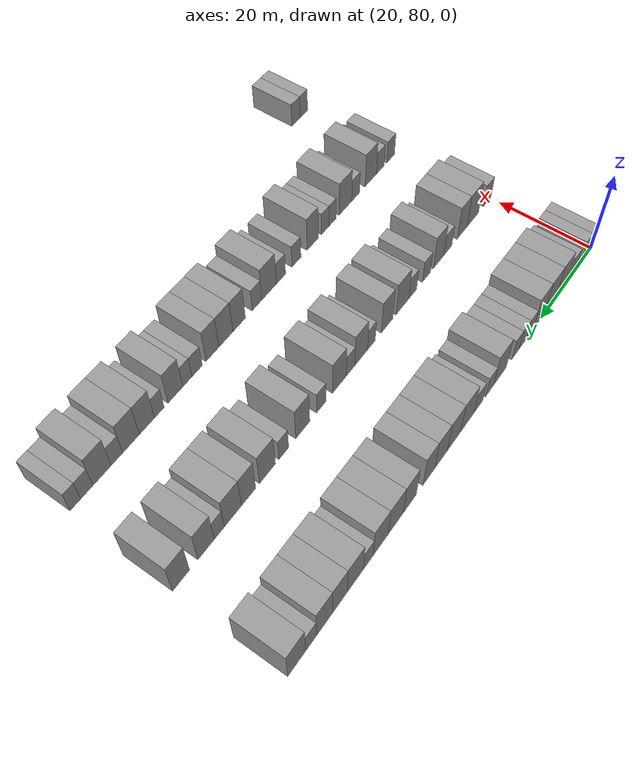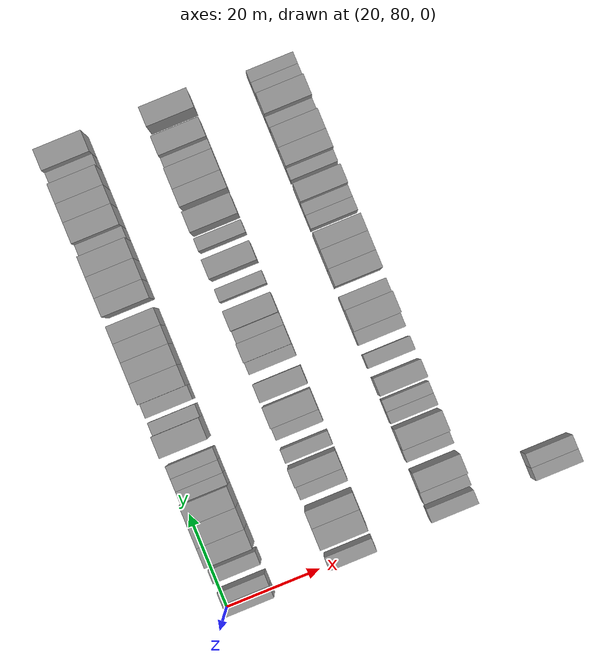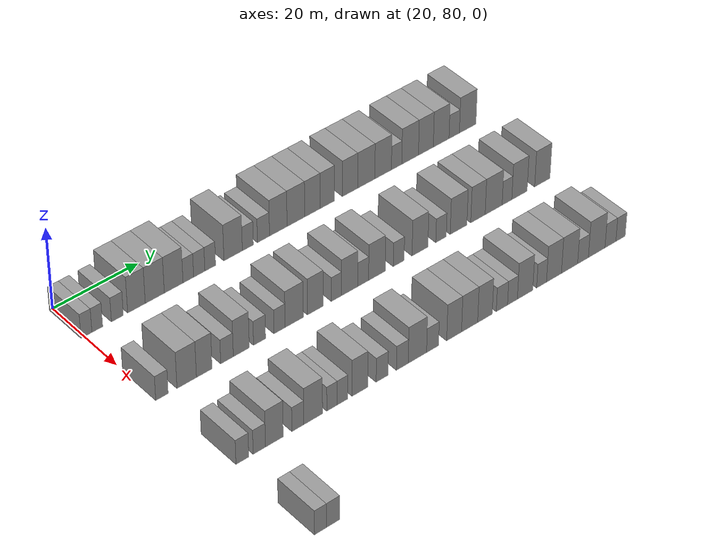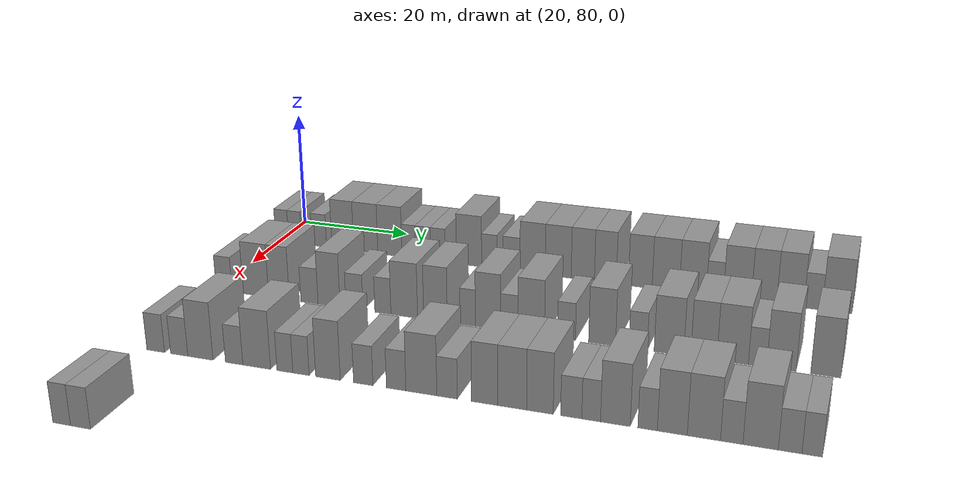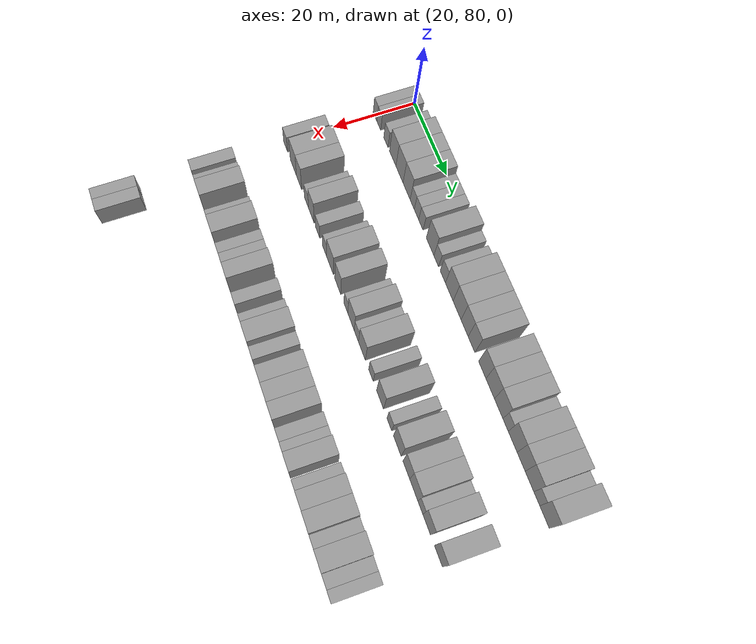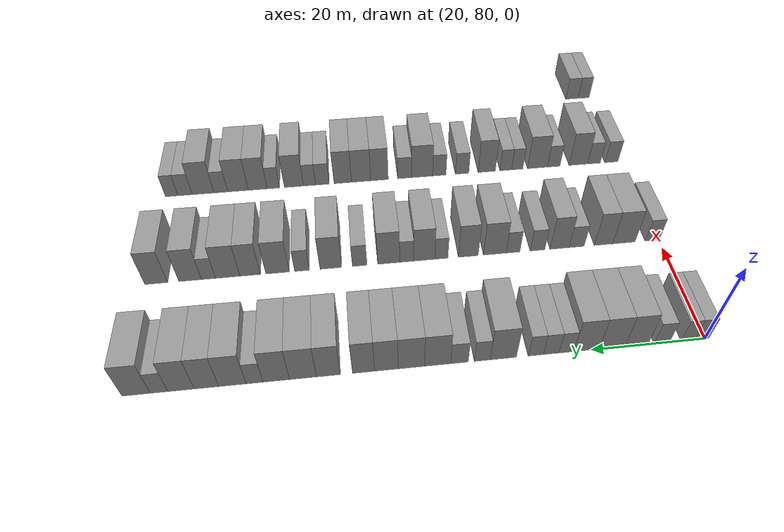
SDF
<sdf version="1.6">
 <world name="default">
  <model name="building_107">
   <static>1</static>
   <pose>25.0000 80.4806 0 0.000000 0.000000 0.000000</pose>
   <link name="link">
    <pose>0 0 3.00 0 0 0</pose>
    <collision name="collision"><geometry><box><size>10.0000 2.5077 6.0000</size></box></geometry></collision>
    <visual name="visual">
     <cast_shadows>0</cast_shadows>
     <geometry><box><size>10.0000 2.5077 6.0000</size></box></geometry>
     <material>
      <script>
       <uri>model://grey_wall/materials/scripts</uri>
       <uri>model://grey_wall/materials/textures</uri>
       <name>vrc/grey_wall</name>
      </script>
     </material>
    </visual>
   </link>
  </model>
  <model name="building_108">
   <static>1</static>
   <pose>25.0000 82.9794 0 0.000000 0.000000 0.000000</pose>
   <link name="link">
    <pose>0 0 3.00 0 0 0</pose>
    <collision name="collision"><geometry><box><size>10.0000 2.4899 6.0000</size></box></geometry></collision>
    <visual name="visual">
     <cast_shadows>0</cast_shadows>
     <geometry><box><size>10.0000 2.4899 6.0000</size></box></geometry>
     <material>
      <script>
       <uri>model://grey_wall/materials/scripts</uri>
       <uri>model://grey_wall/materials/textures</uri>
       <name>vrc/grey_wall</name>
      </script>
     </material>
    </visual>
   </link>
  </model>
  <model name="building_109">
   <static>1</static>
   <pose>25.0000 87.6174 0 0.000000 0.000000 0.000000</pose>
   <link name="link">
    <pose>0 0 3.00 0 0 0</pose>
    <collision name="collision"><geometry><box><size>10.0000 2.7862 6.0000</size></box></geometry></collision>
    <visual name="visual">
     <cast_shadows>0</cast_shadows>
     <geometry><box><size>10.0000 2.7862 6.0000</size></box></geometry>
     <material>
      <script>
       <uri>model://grey_wall/materials/scripts</uri>
       <uri>model://grey_wall/materials/textures</uri>
       <name>vrc/grey_wall</name>
      </script>
     </material>
    </visual>
   </link>
  </model>
  <model name="building_110">
   <static>1</static>
   <pose>25.0000 92.0696 0 0.000000 0.000000 0.000000</pose>
   <link name="link">
    <pose>0 0 4.50 0 0 0</pose>
    <collision name="collision"><geometry><box><size>10.0000 4.1181 9.0000</size></box></geometry></collision>
    <visual name="visual">
     <cast_shadows>0</cast_shadows>
     <geometry><box><size>10.0000 4.1181 9.0000</size></box></geometry>
     <material>
      <script>
       <uri>model://grey_wall/materials/scripts</uri>
       <uri>model://grey_wall/materials/textures</uri>
       <name>vrc/grey_wall</name>
      </script>
     </material>
    </visual>
   </link>
  </model>
  <model name="building_111">
   <static>1</static>
   <pose>25.0000 96.3772 0 0.000000 0.000000 0.000000</pose>
   <link name="link">
    <pose>0 0 4.50 0 0 0</pose>
    <collision name="collision"><geometry><box><size>10.0000 4.4972 9.0000</size></box></geometry></collision>
    <visual name="visual">
     <cast_shadows>0</cast_shadows>
     <geometry><box><size>10.0000 4.4972 9.0000</size></box></geometry>
     <material>
      <script>
       <uri>model://grey_wall/materials/scripts</uri>
       <uri>model://grey_wall/materials/textures</uri>
       <name>vrc/grey_wall</name>
      </script>
     </material>
    </visual>
   </link>
  </model>
  <model name="building_112">
   <static>1</static>
   <pose>25.0000 100.8477 0 0.000000 0.000000 0.000000</pose>
   <link name="link">
    <pose>0 0 4.50 0 0 0</pose>
    <collision name="collision"><geometry><box><size>10.0000 4.4437 9.0000</size></box></geometry></collision>
    <visual name="visual">
     <cast_shadows>0</cast_shadows>
     <geometry><box><size>10.0000 4.4437 9.0000</size></box></geometry>
     <material>
      <script>
       <uri>model://grey_wall/materials/scripts</uri>
       <uri>model://grey_wall/materials/textures</uri>
       <name>vrc/grey_wall</name>
      </script>
     </material>
    </visual>
   </link>
  </model>
  <model name="building_113">
   <static>1</static>
   <pose>25.0000 104.3367 0 0.000000 0.000000 0.000000</pose>
   <link name="link">
    <pose>0 0 3.00 0 0 0</pose>
    <collision name="collision"><geometry><box><size>10.0000 2.5344 6.0000</size></box></geometry></collision>
    <visual name="visual">
     <cast_shadows>0</cast_shadows>
     <geometry><box><size>10.0000 2.5344 6.0000</size></box></geometry>
     <material>
      <script>
       <uri>model://grey_wall/materials/scripts</uri>
       <uri>model://grey_wall/materials/textures</uri>
       <name>vrc/grey_wall</name>
      </script>
     </material>
    </visual>
   </link>
  </model>
  <model name="building_114">
   <static>1</static>
   <pose>25.0000 106.9568 0 0.000000 0.000000 0.000000</pose>
   <link name="link">
    <pose>0 0 3.00 0 0 0</pose>
    <collision name="collision"><geometry><box><size>10.0000 2.7058 6.0000</size></box></geometry></collision>
    <visual name="visual">
     <cast_shadows>0</cast_shadows>
     <geometry><box><size>10.0000 2.7058 6.0000</size></box></geometry>
     <material>
      <script>
       <uri>model://grey_wall/materials/scripts</uri>
       <uri>model://grey_wall/materials/textures</uri>
       <name>vrc/grey_wall</name>
      </script>
     </material>
    </visual>
   </link>
  </model>
  <model name="building_115">
   <static>1</static>
   <pose>25.0000 109.6097 0 0.000000 0.000000 0.000000</pose>
   <link name="link">
    <pose>0 0 3.00 0 0 0</pose>
    <collision name="collision"><geometry><box><size>10.0000 2.5999 6.0000</size></box></geometry></collision>
    <visual name="visual">
     <cast_shadows>0</cast_shadows>
     <geometry><box><size>10.0000 2.5999 6.0000</size></box></geometry>
     <material>
      <script>
       <uri>model://grey_wall/materials/scripts</uri>
       <uri>model://grey_wall/materials/textures</uri>
       <name>vrc/grey_wall</name>
      </script>
     </material>
    </visual>
   </link>
  </model>
  <model name="building_116">
   <static>1</static>
   <pose>25.0000 115.1558 0 0.000000 0.000000 0.000000</pose>
   <link name="link">
    <pose>0 0 4.50 0 0 0</pose>
    <collision name="collision"><geometry><box><size>10.0000 4.4924 9.0000</size></box></geometry></collision>
    <visual name="visual">
     <cast_shadows>0</cast_shadows>
     <geometry><box><size>10.0000 4.4924 9.0000</size></box></geometry>
     <material>
      <script>
       <uri>model://grey_wall/materials/scripts</uri>
       <uri>model://grey_wall/materials/textures</uri>
       <name>vrc/grey_wall</name>
      </script>
     </material>
    </visual>
   </link>
  </model>
  <model name="building_117">
   <static>1</static>
   <pose>25.0000 118.7515 0 0.000000 0.000000 0.000000</pose>
   <link name="link">
    <pose>0 0 3.00 0 0 0</pose>
    <collision name="collision"><geometry><box><size>10.0000 2.6989 6.0000</size></box></geometry></collision>
    <visual name="visual">
     <cast_shadows>0</cast_shadows>
     <geometry><box><size>10.0000 2.6989 6.0000</size></box></geometry>
     <material>
      <script>
       <uri>model://grey_wall/materials/scripts</uri>
       <uri>model://grey_wall/materials/textures</uri>
       <name>vrc/grey_wall</name>
      </script>
     </material>
    </visual>
   </link>
  </model>
  <model name="building_118">
   <static>1</static>
   <pose>25.0000 122.5952 0 0.000000 0.000000 0.000000</pose>
   <link name="link">
    <pose>0 0 3.00 0 0 0</pose>
    <collision name="collision"><geometry><box><size>10.0000 2.9885 6.0000</size></box></geometry></collision>
    <visual name="visual">
     <cast_shadows>0</cast_shadows>
     <geometry><box><size>10.0000 2.9885 6.0000</size></box></geometry>
     <material>
      <script>
       <uri>model://grey_wall/materials/scripts</uri>
       <uri>model://grey_wall/materials/textures</uri>
       <name>vrc/grey_wall</name>
      </script>
     </material>
    </visual>
   </link>
  </model>
  <model name="building_119">
   <static>1</static>
   <pose>25.0000 126.2687 0 0.000000 0.000000 0.000000</pose>
   <link name="link">
    <pose>0 0 4.50 0 0 0</pose>
    <collision name="collision"><geometry><box><size>10.0000 4.3585 9.0000</size></box></geometry></collision>
    <visual name="visual">
     <cast_shadows>0</cast_shadows>
     <geometry><box><size>10.0000 4.3585 9.0000</size></box></geometry>
     <material>
      <script>
       <uri>model://grey_wall/materials/scripts</uri>
       <uri>model://grey_wall/materials/textures</uri>
       <name>vrc/grey_wall</name>
      </script>
     </material>
    </visual>
   </link>
  </model>
  <model name="building_120">
   <static>1</static>
   <pose>25.0000 130.6593 0 0.000000 0.000000 0.000000</pose>
   <link name="link">
    <pose>0 0 4.50 0 0 0</pose>
    <collision name="collision"><geometry><box><size>10.0000 4.4227 9.0000</size></box></geometry></collision>
    <visual name="visual">
     <cast_shadows>0</cast_shadows>
     <geometry><box><size>10.0000 4.4227 9.0000</size></box></geometry>
     <material>
      <script>
       <uri>model://grey_wall/materials/scripts</uri>
       <uri>model://grey_wall/materials/textures</uri>
       <name>vrc/grey_wall</name>
      </script>
     </material>
    </visual>
   </link>
  </model>
  <model name="building_121">
   <static>1</static>
   <pose>25.0000 134.8276 0 0.000000 0.000000 0.000000</pose>
   <link name="link">
    <pose>0 0 4.50 0 0 0</pose>
    <collision name="collision"><geometry><box><size>10.0000 3.9140 9.0000</size></box></geometry></collision>
    <visual name="visual">
     <cast_shadows>0</cast_shadows>
     <geometry><box><size>10.0000 3.9140 9.0000</size></box></geometry>
     <material>
      <script>
       <uri>model://grey_wall/materials/scripts</uri>
       <uri>model://grey_wall/materials/textures</uri>
       <name>vrc/grey_wall</name>
      </script>
     </material>
    </visual>
   </link>
  </model>
  <model name="building_122">
   <static>1</static>
   <pose>25.0000 138.6091 0 0.000000 0.000000 0.000000</pose>
   <link name="link">
    <pose>0 0 4.50 0 0 0</pose>
    <collision name="collision"><geometry><box><size>10.0000 3.6490 9.0000</size></box></geometry></collision>
    <visual name="visual">
     <cast_shadows>0</cast_shadows>
     <geometry><box><size>10.0000 3.6490 9.0000</size></box></geometry>
     <material>
      <script>
       <uri>model://grey_wall/materials/scripts</uri>
       <uri>model://grey_wall/materials/textures</uri>
       <name>vrc/grey_wall</name>
      </script>
     </material>
    </visual>
   </link>
  </model>
  <model name="building_123">
   <static>1</static>
   <pose>25.0000 144.3823 0 0.000000 0.000000 0.000000</pose>
   <link name="link">
    <pose>0 0 4.50 0 0 0</pose>
    <collision name="collision"><geometry><box><size>10.0000 3.8973 9.0000</size></box></geometry></collision>
    <visual name="visual">
     <cast_shadows>0</cast_shadows>
     <geometry><box><size>10.0000 3.8973 9.0000</size></box></geometry>
     <material>
      <script>
       <uri>model://grey_wall/materials/scripts</uri>
       <uri>model://grey_wall/materials/textures</uri>
       <name>vrc/grey_wall</name>
      </script>
     </material>
    </visual>
   </link>
  </model>
  <model name="building_124">
   <static>1</static>
   <pose>25.0000 148.5452 0 0.000000 0.000000 0.000000</pose>
   <link name="link">
    <pose>0 0 4.50 0 0 0</pose>
    <collision name="collision"><geometry><box><size>10.0000 4.4286 9.0000</size></box></geometry></collision>
    <visual name="visual">
     <cast_shadows>0</cast_shadows>
     <geometry><box><size>10.0000 4.4286 9.0000</size></box></geometry>
     <material>
      <script>
       <uri>model://grey_wall/materials/scripts</uri>
       <uri>model://grey_wall/materials/textures</uri>
       <name>vrc/grey_wall</name>
      </script>
     </material>
    </visual>
   </link>
  </model>
  <model name="building_125">
   <static>1</static>
   <pose>25.0000 152.9119 0 0.000000 0.000000 0.000000</pose>
   <link name="link">
    <pose>0 0 4.50 0 0 0</pose>
    <collision name="collision"><geometry><box><size>10.0000 4.3048 9.0000</size></box></geometry></collision>
    <visual name="visual">
     <cast_shadows>0</cast_shadows>
     <geometry><box><size>10.0000 4.3048 9.0000</size></box></geometry>
     <material>
      <script>
       <uri>model://grey_wall/materials/scripts</uri>
       <uri>model://grey_wall/materials/textures</uri>
       <name>vrc/grey_wall</name>
      </script>
     </material>
    </visual>
   </link>
  </model>
  <model name="building_126">
   <static>1</static>
   <pose>25.0000 156.4189 0 0.000000 0.000000 0.000000</pose>
   <link name="link">
    <pose>0 0 3.00 0 0 0</pose>
    <collision name="collision"><geometry><box><size>10.0000 2.7092 6.0000</size></box></geometry></collision>
    <visual name="visual">
     <cast_shadows>0</cast_shadows>
     <geometry><box><size>10.0000 2.7092 6.0000</size></box></geometry>
     <material>
      <script>
       <uri>model://grey_wall/materials/scripts</uri>
       <uri>model://grey_wall/materials/textures</uri>
       <name>vrc/grey_wall</name>
      </script>
     </material>
    </visual>
   </link>
  </model>
  <model name="building_127">
   <static>1</static>
   <pose>25.0000 159.9689 0 0.000000 0.000000 0.000000</pose>
   <link name="link">
    <pose>0 0 4.50 0 0 0</pose>
    <collision name="collision"><geometry><box><size>10.0000 4.3909 9.0000</size></box></geometry></collision>
    <visual name="visual">
     <cast_shadows>0</cast_shadows>
     <geometry><box><size>10.0000 4.3909 9.0000</size></box></geometry>
     <material>
      <script>
       <uri>model://grey_wall/materials/scripts</uri>
       <uri>model://grey_wall/materials/textures</uri>
       <name>vrc/grey_wall</name>
      </script>
     </material>
    </visual>
   </link>
  </model>
  <model name="building_128">
   <static>1</static>
   <pose>25.0000 164.1301 0 0.000000 0.000000 0.000000</pose>
   <link name="link">
    <pose>0 0 4.50 0 0 0</pose>
    <collision name="collision"><geometry><box><size>10.0000 3.9314 9.0000</size></box></geometry></collision>
    <visual name="visual">
     <cast_shadows>0</cast_shadows>
     <geometry><box><size>10.0000 3.9314 9.0000</size></box></geometry>
     <material>
      <script>
       <uri>model://grey_wall/materials/scripts</uri>
       <uri>model://grey_wall/materials/textures</uri>
       <name>vrc/grey_wall</name>
      </script>
     </material>
    </visual>
   </link>
  </model>
  <model name="building_129">
   <static>1</static>
   <pose>25.0000 168.1884 0 0.000000 0.000000 0.000000</pose>
   <link name="link">
    <pose>0 0 4.50 0 0 0</pose>
    <collision name="collision"><geometry><box><size>10.0000 4.1851 9.0000</size></box></geometry></collision>
    <visual name="visual">
     <cast_shadows>0</cast_shadows>
     <geometry><box><size>10.0000 4.1851 9.0000</size></box></geometry>
     <material>
      <script>
       <uri>model://grey_wall/materials/scripts</uri>
       <uri>model://grey_wall/materials/textures</uri>
       <name>vrc/grey_wall</name>
      </script>
     </material>
    </visual>
   </link>
  </model>
  <model name="building_130">
   <static>1</static>
   <pose>25.0000 171.6714 0 0.000000 0.000000 0.000000</pose>
   <link name="link">
    <pose>0 0 3.00 0 0 0</pose>
    <collision name="collision"><geometry><box><size>10.0000 2.7810 6.0000</size></box></geometry></collision>
    <visual name="visual">
     <cast_shadows>0</cast_shadows>
     <geometry><box><size>10.0000 2.7810 6.0000</size></box></geometry>
     <material>
      <script>
       <uri>model://grey_wall/materials/scripts</uri>
       <uri>model://grey_wall/materials/textures</uri>
       <name>vrc/grey_wall</name>
      </script>
     </material>
    </visual>
   </link>
  </model>
  <model name="building_131">
   <static>1</static>
   <pose>25.0000 175.2971 0 0.000000 0.000000 0.000000</pose>
   <link name="link">
    <pose>0 0 4.50 0 0 0</pose>
    <collision name="collision"><geometry><box><size>10.0000 4.4704 9.0000</size></box></geometry></collision>
    <visual name="visual">
     <cast_shadows>0</cast_shadows>
     <geometry><box><size>10.0000 4.4704 9.0000</size></box></geometry>
     <material>
      <script>
       <uri>model://grey_wall/materials/scripts</uri>
       <uri>model://grey_wall/materials/textures</uri>
       <name>vrc/grey_wall</name>
      </script>
     </material>
    </visual>
   </link>
  </model>
  <model name="building_302">
   <static>1</static>
   <pose>47.0000 81.3037 0 0.000000 0.000000 0.000000</pose>
   <link name="link">
    <pose>0 0 3.00 0 0 0</pose>
    <collision name="collision"><geometry><box><size>10.0000 2.8504 6.0000</size></box></geometry></collision>
    <visual name="visual">
     <cast_shadows>0</cast_shadows>
     <geometry><box><size>10.0000 2.8504 6.0000</size></box></geometry>
     <material>
      <script>
       <uri>model://grey_wall/materials/scripts</uri>
       <uri>model://grey_wall/materials/textures</uri>
       <name>vrc/grey_wall</name>
      </script>
     </material>
    </visual>
   </link>
  </model>
  <model name="building_303">
   <static>1</static>
   <pose>47.0000 86.9668 0 0.000000 0.000000 0.000000</pose>
   <link name="link">
    <pose>0 0 4.50 0 0 0</pose>
    <collision name="collision"><geometry><box><size>10.0000 4.4757 9.0000</size></box></geometry></collision>
    <visual name="visual">
     <cast_shadows>0</cast_shadows>
     <geometry><box><size>10.0000 4.4757 9.0000</size></box></geometry>
     <material>
      <script>
       <uri>model://grey_wall/materials/scripts</uri>
       <uri>model://grey_wall/materials/textures</uri>
       <name>vrc/grey_wall</name>
      </script>
     </material>
    </visual>
   </link>
  </model>
  <model name="building_304">
   <static>1</static>
   <pose>47.0000 91.0204 0 0.000000 0.000000 0.000000</pose>
   <link name="link">
    <pose>0 0 4.50 0 0 0</pose>
    <collision name="collision"><geometry><box><size>10.0000 3.6315 9.0000</size></box></geometry></collision>
    <visual name="visual">
     <cast_shadows>0</cast_shadows>
     <geometry><box><size>10.0000 3.6315 9.0000</size></box></geometry>
     <material>
      <script>
       <uri>model://grey_wall/materials/scripts</uri>
       <uri>model://grey_wall/materials/textures</uri>
       <name>vrc/grey_wall</name>
      </script>
     </material>
    </visual>
   </link>
  </model>
  <model name="building_305">
   <static>1</static>
   <pose>47.0000 96.3102 0 0.000000 0.000000 0.000000</pose>
   <link name="link">
    <pose>0 0 3.00 0 0 0</pose>
    <collision name="collision"><geometry><box><size>10.0000 2.9480 6.0000</size></box></geometry></collision>
    <visual name="visual">
     <cast_shadows>0</cast_shadows>
     <geometry><box><size>10.0000 2.9480 6.0000</size></box></geometry>
     <material>
      <script>
       <uri>model://grey_wall/materials/scripts</uri>
       <uri>model://grey_wall/materials/textures</uri>
       <name>vrc/grey_wall</name>
      </script>
     </material>
    </visual>
   </link>
  </model>
  <model name="building_306">
   <static>1</static>
   <pose>47.0000 99.6657 0 0.000000 0.000000 0.000000</pose>
   <link name="link">
    <pose>0 0 4.50 0 0 0</pose>
    <collision name="collision"><geometry><box><size>10.0000 3.7630 9.0000</size></box></geometry></collision>
    <visual name="visual">
     <cast_shadows>0</cast_shadows>
     <geometry><box><size>10.0000 3.7630 9.0000</size></box></geometry>
     <material>
      <script>
       <uri>model://grey_wall/materials/scripts</uri>
       <uri>model://grey_wall/materials/textures</uri>
       <name>vrc/grey_wall</name>
      </script>
     </material>
    </visual>
   </link>
  </model>
  <model name="building_307">
   <static>1</static>
   <pose>47.0000 103.9807 0 0.000000 0.000000 0.000000</pose>
   <link name="link">
    <pose>0 0 3.00 0 0 0</pose>
    <collision name="collision"><geometry><box><size>10.0000 2.8671 6.0000</size></box></geometry></collision>
    <visual name="visual">
     <cast_shadows>0</cast_shadows>
     <geometry><box><size>10.0000 2.8671 6.0000</size></box></geometry>
     <material>
      <script>
       <uri>model://grey_wall/materials/scripts</uri>
       <uri>model://grey_wall/materials/textures</uri>
       <name>vrc/grey_wall</name>
      </script>
     </material>
    </visual>
   </link>
  </model>
  <model name="building_308">
   <static>1</static>
   <pose>47.0000 108.7445 0 0.000000 0.000000 0.000000</pose>
   <link name="link">
    <pose>0 0 3.00 0 0 0</pose>
    <collision name="collision"><geometry><box><size>10.0000 2.6604 6.0000</size></box></geometry></collision>
    <visual name="visual">
     <cast_shadows>0</cast_shadows>
     <geometry><box><size>10.0000 2.6604 6.0000</size></box></geometry>
     <material>
      <script>
       <uri>model://grey_wall/materials/scripts</uri>
       <uri>model://grey_wall/materials/textures</uri>
       <name>vrc/grey_wall</name>
      </script>
     </material>
    </visual>
   </link>
  </model>
  <model name="building_309">
   <static>1</static>
   <pose>47.0000 112.2692 0 0.000000 0.000000 0.000000</pose>
   <link name="link">
    <pose>0 0 4.50 0 0 0</pose>
    <collision name="collision"><geometry><box><size>10.0000 4.3890 9.0000</size></box></geometry></collision>
    <visual name="visual">
     <cast_shadows>0</cast_shadows>
     <geometry><box><size>10.0000 4.3890 9.0000</size></box></geometry>
     <material>
      <script>
       <uri>model://grey_wall/materials/scripts</uri>
       <uri>model://grey_wall/materials/textures</uri>
       <name>vrc/grey_wall</name>
      </script>
     </material>
    </visual>
   </link>
  </model>
  <model name="building_310">
   <static>1</static>
   <pose>47.0000 117.3725 0 0.000000 0.000000 0.000000</pose>
   <link name="link">
    <pose>0 0 4.50 0 0 0</pose>
    <collision name="collision"><geometry><box><size>10.0000 3.8176 9.0000</size></box></geometry></collision>
    <visual name="visual">
     <cast_shadows>0</cast_shadows>
     <geometry><box><size>10.0000 3.8176 9.0000</size></box></geometry>
     <material>
      <script>
       <uri>model://grey_wall/materials/scripts</uri>
       <uri>model://grey_wall/materials/textures</uri>
       <name>vrc/grey_wall</name>
      </script>
     </material>
    </visual>
   </link>
  </model>
  <model name="building_311">
   <static>1</static>
   <pose>47.0000 122.5309 0 0.000000 0.000000 0.000000</pose>
   <link name="link">
    <pose>0 0 3.00 0 0 0</pose>
    <collision name="collision"><geometry><box><size>10.0000 2.4991 6.0000</size></box></geometry></collision>
    <visual name="visual">
     <cast_shadows>0</cast_shadows>
     <geometry><box><size>10.0000 2.4991 6.0000</size></box></geometry>
     <material>
      <script>
       <uri>model://grey_wall/materials/scripts</uri>
       <uri>model://grey_wall/materials/textures</uri>
       <name>vrc/grey_wall</name>
      </script>
     </material>
    </visual>
   </link>
  </model>
  <model name="building_312">
   <static>1</static>
   <pose>47.0000 125.7804 0 0.000000 0.000000 0.000000</pose>
   <link name="link">
    <pose>0 0 4.50 0 0 0</pose>
    <collision name="collision"><geometry><box><size>10.0000 3.9999 9.0000</size></box></geometry></collision>
    <visual name="visual">
     <cast_shadows>0</cast_shadows>
     <geometry><box><size>10.0000 3.9999 9.0000</size></box></geometry>
     <material>
      <script>
       <uri>model://grey_wall/materials/scripts</uri>
       <uri>model://grey_wall/materials/textures</uri>
       <name>vrc/grey_wall</name>
      </script>
     </material>
    </visual>
   </link>
  </model>
  <model name="building_313">
   <static>1</static>
   <pose>47.0000 129.1164 0 0.000000 0.000000 0.000000</pose>
   <link name="link">
    <pose>0 0 3.00 0 0 0</pose>
    <collision name="collision"><geometry><box><size>10.0000 2.6721 6.0000</size></box></geometry></collision>
    <visual name="visual">
     <cast_shadows>0</cast_shadows>
     <geometry><box><size>10.0000 2.6721 6.0000</size></box></geometry>
     <material>
      <script>
       <uri>model://grey_wall/materials/scripts</uri>
       <uri>model://grey_wall/materials/textures</uri>
       <name>vrc/grey_wall</name>
      </script>
     </material>
    </visual>
   </link>
  </model>
  <model name="building_314">
   <static>1</static>
   <pose>47.0000 132.5301 0 0.000000 0.000000 0.000000</pose>
   <link name="link">
    <pose>0 0 4.50 0 0 0</pose>
    <collision name="collision"><geometry><box><size>10.0000 4.1552 9.0000</size></box></geometry></collision>
    <visual name="visual">
     <cast_shadows>0</cast_shadows>
     <geometry><box><size>10.0000 4.1552 9.0000</size></box></geometry>
     <material>
      <script>
       <uri>model://grey_wall/materials/scripts</uri>
       <uri>model://grey_wall/materials/textures</uri>
       <name>vrc/grey_wall</name>
      </script>
     </material>
    </visual>
   </link>
  </model>
  <model name="building_315">
   <static>1</static>
   <pose>47.0000 137.9764 0 0.000000 0.000000 0.000000</pose>
   <link name="link">
    <pose>0 0 3.00 0 0 0</pose>
    <collision name="collision"><geometry><box><size>10.0000 2.7374 6.0000</size></box></geometry></collision>
    <visual name="visual">
     <cast_shadows>0</cast_shadows>
     <geometry><box><size>10.0000 2.7374 6.0000</size></box></geometry>
     <material>
      <script>
       <uri>model://grey_wall/materials/scripts</uri>
       <uri>model://grey_wall/materials/textures</uri>
       <name>vrc/grey_wall</name>
      </script>
     </material>
    </visual>
   </link>
  </model>
  <model name="building_316">
   <static>1</static>
   <pose>47.0000 143.3645 0 0.000000 0.000000 0.000000</pose>
   <link name="link">
    <pose>0 0 4.50 0 0 0</pose>
    <collision name="collision"><geometry><box><size>10.0000 4.0388 9.0000</size></box></geometry></collision>
    <visual name="visual">
     <cast_shadows>0</cast_shadows>
     <geometry><box><size>10.0000 4.0388 9.0000</size></box></geometry>
     <material>
      <script>
       <uri>model://grey_wall/materials/scripts</uri>
       <uri>model://grey_wall/materials/textures</uri>
       <name>vrc/grey_wall</name>
      </script>
     </material>
    </visual>
   </link>
  </model>
  <model name="building_317">
   <static>1</static>
   <pose>47.0000 148.7353 0 0.000000 0.000000 0.000000</pose>
   <link name="link">
    <pose>0 0 3.00 0 0 0</pose>
    <collision name="collision"><geometry><box><size>10.0000 2.7028 6.0000</size></box></geometry></collision>
    <visual name="visual">
     <cast_shadows>0</cast_shadows>
     <geometry><box><size>10.0000 2.7028 6.0000</size></box></geometry>
     <material>
      <script>
       <uri>model://grey_wall/materials/scripts</uri>
       <uri>model://grey_wall/materials/textures</uri>
       <name>vrc/grey_wall</name>
      </script>
     </material>
    </visual>
   </link>
  </model>
  <model name="building_318">
   <static>1</static>
   <pose>47.0000 153.2479 0 0.000000 0.000000 0.000000</pose>
   <link name="link">
    <pose>0 0 4.50 0 0 0</pose>
    <collision name="collision"><geometry><box><size>10.0000 4.3224 9.0000</size></box></geometry></collision>
    <visual name="visual">
     <cast_shadows>0</cast_shadows>
     <geometry><box><size>10.0000 4.3224 9.0000</size></box></geometry>
     <material>
      <script>
       <uri>model://grey_wall/materials/scripts</uri>
       <uri>model://grey_wall/materials/textures</uri>
       <name>vrc/grey_wall</name>
      </script>
     </material>
    </visual>
   </link>
  </model>
  <model name="building_319">
   <static>1</static>
   <pose>47.0000 158.2819 0 0.000000 0.000000 0.000000</pose>
   <link name="link">
    <pose>0 0 4.50 0 0 0</pose>
    <collision name="collision"><geometry><box><size>10.0000 3.7458 9.0000</size></box></geometry></collision>
    <visual name="visual">
     <cast_shadows>0</cast_shadows>
     <geometry><box><size>10.0000 3.7458 9.0000</size></box></geometry>
     <material>
      <script>
       <uri>model://grey_wall/materials/scripts</uri>
       <uri>model://grey_wall/materials/textures</uri>
       <name>vrc/grey_wall</name>
      </script>
     </material>
    </visual>
   </link>
  </model>
  <model name="building_320">
   <static>1</static>
   <pose>47.0000 162.3800 0 0.000000 0.000000 0.000000</pose>
   <link name="link">
    <pose>0 0 4.50 0 0 0</pose>
    <collision name="collision"><geometry><box><size>10.0000 4.4503 9.0000</size></box></geometry></collision>
    <visual name="visual">
     <cast_shadows>0</cast_shadows>
     <geometry><box><size>10.0000 4.4503 9.0000</size></box></geometry>
     <material>
      <script>
       <uri>model://grey_wall/materials/scripts</uri>
       <uri>model://grey_wall/materials/textures</uri>
       <name>vrc/grey_wall</name>
      </script>
     </material>
    </visual>
   </link>
  </model>
  <model name="building_321">
   <static>1</static>
   <pose>47.0000 165.8920 0 0.000000 0.000000 0.000000</pose>
   <link name="link">
    <pose>0 0 3.00 0 0 0</pose>
    <collision name="collision"><geometry><box><size>10.0000 2.5737 6.0000</size></box></geometry></collision>
    <visual name="visual">
     <cast_shadows>0</cast_shadows>
     <geometry><box><size>10.0000 2.5737 6.0000</size></box></geometry>
     <material>
      <script>
       <uri>model://grey_wall/materials/scripts</uri>
       <uri>model://grey_wall/materials/textures</uri>
       <name>vrc/grey_wall</name>
      </script>
     </material>
    </visual>
   </link>
  </model>
  <model name="building_322">
   <static>1</static>
   <pose>47.0000 169.2128 0 0.000000 0.000000 0.000000</pose>
   <link name="link">
    <pose>0 0 4.50 0 0 0</pose>
    <collision name="collision"><geometry><box><size>10.0000 4.0679 9.0000</size></box></geometry></collision>
    <visual name="visual">
     <cast_shadows>0</cast_shadows>
     <geometry><box><size>10.0000 4.0679 9.0000</size></box></geometry>
     <material>
      <script>
       <uri>model://grey_wall/materials/scripts</uri>
       <uri>model://grey_wall/materials/textures</uri>
       <name>vrc/grey_wall</name>
      </script>
     </material>
    </visual>
   </link>
  </model>
  <model name="building_323">
   <static>1</static>
   <pose>47.0000 175.3021 0 0.000000 0.000000 0.000000</pose>
   <link name="link">
    <pose>0 0 4.50 0 0 0</pose>
    <collision name="collision"><geometry><box><size>10.0000 4.1107 9.0000</size></box></geometry></collision>
    <visual name="visual">
     <cast_shadows>0</cast_shadows>
     <geometry><box><size>10.0000 4.1107 9.0000</size></box></geometry>
     <material>
      <script>
       <uri>model://grey_wall/materials/scripts</uri>
       <uri>model://grey_wall/materials/textures</uri>
       <name>vrc/grey_wall</name>
      </script>
     </material>
    </visual>
   </link>
  </model>
  <model name="building_490">
   <static>1</static>
   <pose>69.0000 82.4155 0 0.000000 0.000000 0.000000</pose>
   <link name="link">
    <pose>0 0 3.00 0 0 0</pose>
    <collision name="collision"><geometry><box><size>10.0000 2.9071 6.0000</size></box></geometry></collision>
    <visual name="visual">
     <cast_shadows>0</cast_shadows>
     <geometry><box><size>10.0000 2.9071 6.0000</size></box></geometry>
     <material>
      <script>
       <uri>model://grey_wall/materials/scripts</uri>
       <uri>model://grey_wall/materials/textures</uri>
       <name>vrc/grey_wall</name>
      </script>
     </material>
    </visual>
   </link>
  </model>
  <model name="building_491">
   <static>1</static>
   <pose>69.0000 86.2761 0 0.000000 0.000000 0.000000</pose>
   <link name="link">
    <pose>0 0 3.00 0 0 0</pose>
    <collision name="collision"><geometry><box><size>10.0000 2.8140 6.0000</size></box></geometry></collision>
    <visual name="visual">
     <cast_shadows>0</cast_shadows>
     <geometry><box><size>10.0000 2.8140 6.0000</size></box></geometry>
     <material>
      <script>
       <uri>model://grey_wall/materials/scripts</uri>
       <uri>model://grey_wall/materials/textures</uri>
       <name>vrc/grey_wall</name>
      </script>
     </material>
    </visual>
   </link>
  </model>
  <model name="building_492">
   <static>1</static>
   <pose>69.0000 89.7167 0 0.000000 0.000000 0.000000</pose>
   <link name="link">
    <pose>0 0 4.50 0 0 0</pose>
    <collision name="collision"><geometry><box><size>10.0000 4.0672 9.0000</size></box></geometry></collision>
    <visual name="visual">
     <cast_shadows>0</cast_shadows>
     <geometry><box><size>10.0000 4.0672 9.0000</size></box></geometry>
     <material>
      <script>
       <uri>model://grey_wall/materials/scripts</uri>
       <uri>model://grey_wall/materials/textures</uri>
       <name>vrc/grey_wall</name>
      </script>
     </material>
    </visual>
   </link>
  </model>
  <model name="building_493">
   <static>1</static>
   <pose>69.0000 95.1281 0 0.000000 0.000000 0.000000</pose>
   <link name="link">
    <pose>0 0 3.00 0 0 0</pose>
    <collision name="collision"><geometry><box><size>10.0000 2.7556 6.0000</size></box></geometry></collision>
    <visual name="visual">
     <cast_shadows>0</cast_shadows>
     <geometry><box><size>10.0000 2.7556 6.0000</size></box></geometry>
     <material>
      <script>
       <uri>model://grey_wall/materials/scripts</uri>
       <uri>model://grey_wall/materials/textures</uri>
       <name>vrc/grey_wall</name>
      </script>
     </material>
    </visual>
   </link>
  </model>
  <model name="building_494">
   <static>1</static>
   <pose>69.0000 98.6850 0 0.000000 0.000000 0.000000</pose>
   <link name="link">
    <pose>0 0 4.50 0 0 0</pose>
    <collision name="collision"><geometry><box><size>10.0000 4.3582 9.0000</size></box></geometry></collision>
    <visual name="visual">
     <cast_shadows>0</cast_shadows>
     <geometry><box><size>10.0000 4.3582 9.0000</size></box></geometry>
     <material>
      <script>
       <uri>model://grey_wall/materials/scripts</uri>
       <uri>model://grey_wall/materials/textures</uri>
       <name>vrc/grey_wall</name>
      </script>
     </material>
    </visual>
   </link>
  </model>
  <model name="building_495">
   <static>1</static>
   <pose>69.0000 103.0938 0 0.000000 0.000000 0.000000</pose>
   <link name="link">
    <pose>0 0 3.00 0 0 0</pose>
    <collision name="collision"><geometry><box><size>10.0000 2.4593 6.0000</size></box></geometry></collision>
    <visual name="visual">
     <cast_shadows>0</cast_shadows>
     <geometry><box><size>10.0000 2.4593 6.0000</size></box></geometry>
     <material>
      <script>
       <uri>model://grey_wall/materials/scripts</uri>
       <uri>model://grey_wall/materials/textures</uri>
       <name>vrc/grey_wall</name>
      </script>
     </material>
    </visual>
   </link>
  </model>
  <model name="building_496">
   <static>1</static>
   <pose>69.0000 105.5782 0 0.000000 0.000000 0.000000</pose>
   <link name="link">
    <pose>0 0 3.00 0 0 0</pose>
    <collision name="collision"><geometry><box><size>10.0000 2.5095 6.0000</size></box></geometry></collision>
    <visual name="visual">
     <cast_shadows>0</cast_shadows>
     <geometry><box><size>10.0000 2.5095 6.0000</size></box></geometry>
     <material>
      <script>
       <uri>model://grey_wall/materials/scripts</uri>
       <uri>model://grey_wall/materials/textures</uri>
       <name>vrc/grey_wall</name>
      </script>
     </material>
    </visual>
   </link>
  </model>
  <model name="building_497">
   <static>1</static>
   <pose>69.0000 109.6958 0 0.000000 0.000000 0.000000</pose>
   <link name="link">
    <pose>0 0 4.50 0 0 0</pose>
    <collision name="collision"><geometry><box><size>10.0000 3.7257 9.0000</size></box></geometry></collision>
    <visual name="visual">
     <cast_shadows>0</cast_shadows>
     <geometry><box><size>10.0000 3.7257 9.0000</size></box></geometry>
     <material>
      <script>
       <uri>model://grey_wall/materials/scripts</uri>
       <uri>model://grey_wall/materials/textures</uri>
       <name>vrc/grey_wall</name>
      </script>
     </material>
    </visual>
   </link>
  </model>
  <model name="building_498">
   <static>1</static>
   <pose>69.0000 114.9988 0 0.000000 0.000000 0.000000</pose>
   <link name="link">
    <pose>0 0 3.00 0 0 0</pose>
    <collision name="collision"><geometry><box><size>10.0000 2.8801 6.0000</size></box></geometry></collision>
    <visual name="visual">
     <cast_shadows>0</cast_shadows>
     <geometry><box><size>10.0000 2.8801 6.0000</size></box></geometry>
     <material>
      <script>
       <uri>model://grey_wall/materials/scripts</uri>
       <uri>model://grey_wall/materials/textures</uri>
       <name>vrc/grey_wall</name>
      </script>
     </material>
    </visual>
   </link>
  </model>
  <model name="building_499">
   <static>1</static>
   <pose>69.0000 119.8675 0 0.000000 0.000000 0.000000</pose>
   <link name="link">
    <pose>0 0 3.00 0 0 0</pose>
    <collision name="collision"><geometry><box><size>10.0000 2.8573 6.0000</size></box></geometry></collision>
    <visual name="visual">
     <cast_shadows>0</cast_shadows>
     <geometry><box><size>10.0000 2.8573 6.0000</size></box></geometry>
     <material>
      <script>
       <uri>model://grey_wall/materials/scripts</uri>
       <uri>model://grey_wall/materials/textures</uri>
       <name>vrc/grey_wall</name>
      </script>
     </material>
    </visual>
   </link>
  </model>
  <model name="building_500">
   <static>1</static>
   <pose>69.0000 123.5371 0 0.000000 0.000000 0.000000</pose>
   <link name="link">
    <pose>0 0 4.50 0 0 0</pose>
    <collision name="collision"><geometry><box><size>10.0000 4.4820 9.0000</size></box></geometry></collision>
    <visual name="visual">
     <cast_shadows>0</cast_shadows>
     <geometry><box><size>10.0000 4.4820 9.0000</size></box></geometry>
     <material>
      <script>
       <uri>model://grey_wall/materials/scripts</uri>
       <uri>model://grey_wall/materials/textures</uri>
       <name>vrc/grey_wall</name>
      </script>
     </material>
    </visual>
   </link>
  </model>
  <model name="building_501">
   <static>1</static>
   <pose>69.0000 127.2486 0 0.000000 0.000000 0.000000</pose>
   <link name="link">
    <pose>0 0 3.00 0 0 0</pose>
    <collision name="collision"><geometry><box><size>10.0000 2.9410 6.0000</size></box></geometry></collision>
    <visual name="visual">
     <cast_shadows>0</cast_shadows>
     <geometry><box><size>10.0000 2.9410 6.0000</size></box></geometry>
     <material>
      <script>
       <uri>model://grey_wall/materials/scripts</uri>
       <uri>model://grey_wall/materials/textures</uri>
       <name>vrc/grey_wall</name>
      </script>
     </material>
    </visual>
   </link>
  </model>
  <model name="building_502">
   <static>1</static>
   <pose>69.0000 132.5593 0 0.000000 0.000000 0.000000</pose>
   <link name="link">
    <pose>0 0 4.50 0 0 0</pose>
    <collision name="collision"><geometry><box><size>10.0000 3.6803 9.0000</size></box></geometry></collision>
    <visual name="visual">
     <cast_shadows>0</cast_shadows>
     <geometry><box><size>10.0000 3.6803 9.0000</size></box></geometry>
     <material>
      <script>
       <uri>model://grey_wall/materials/scripts</uri>
       <uri>model://grey_wall/materials/textures</uri>
       <name>vrc/grey_wall</name>
      </script>
     </material>
    </visual>
   </link>
  </model>
  <model name="building_503">
   <static>1</static>
   <pose>69.0000 136.4129 0 0.000000 0.000000 0.000000</pose>
   <link name="link">
    <pose>0 0 4.50 0 0 0</pose>
    <collision name="collision"><geometry><box><size>10.0000 4.0271 9.0000</size></box></geometry></collision>
    <visual name="visual">
     <cast_shadows>0</cast_shadows>
     <geometry><box><size>10.0000 4.0271 9.0000</size></box></geometry>
     <material>
      <script>
       <uri>model://grey_wall/materials/scripts</uri>
       <uri>model://grey_wall/materials/textures</uri>
       <name>vrc/grey_wall</name>
      </script>
     </material>
    </visual>
   </link>
  </model>
  <model name="building_504">
   <static>1</static>
   <pose>69.0000 140.2579 0 0.000000 0.000000 0.000000</pose>
   <link name="link">
    <pose>0 0 4.50 0 0 0</pose>
    <collision name="collision"><geometry><box><size>10.0000 3.6628 9.0000</size></box></geometry></collision>
    <visual name="visual">
     <cast_shadows>0</cast_shadows>
     <geometry><box><size>10.0000 3.6628 9.0000</size></box></geometry>
     <material>
      <script>
       <uri>model://grey_wall/materials/scripts</uri>
       <uri>model://grey_wall/materials/textures</uri>
       <name>vrc/grey_wall</name>
      </script>
     </material>
    </visual>
   </link>
  </model>
  <model name="building_505">
   <static>1</static>
   <pose>69.0000 144.5201 0 0.000000 0.000000 0.000000</pose>
   <link name="link">
    <pose>0 0 3.00 0 0 0</pose>
    <collision name="collision"><geometry><box><size>10.0000 2.8616 6.0000</size></box></geometry></collision>
    <visual name="visual">
     <cast_shadows>0</cast_shadows>
     <geometry><box><size>10.0000 2.8616 6.0000</size></box></geometry>
     <material>
      <script>
       <uri>model://grey_wall/materials/scripts</uri>
       <uri>model://grey_wall/materials/textures</uri>
       <name>vrc/grey_wall</name>
      </script>
     </material>
    </visual>
   </link>
  </model>
  <model name="building_506">
   <static>1</static>
   <pose>69.0000 147.2041 0 0.000000 0.000000 0.000000</pose>
   <link name="link">
    <pose>0 0 3.00 0 0 0</pose>
    <collision name="collision"><geometry><box><size>10.0000 2.5065 6.0000</size></box></geometry></collision>
    <visual name="visual">
     <cast_shadows>0</cast_shadows>
     <geometry><box><size>10.0000 2.5065 6.0000</size></box></geometry>
     <material>
      <script>
       <uri>model://grey_wall/materials/scripts</uri>
       <uri>model://grey_wall/materials/textures</uri>
       <name>vrc/grey_wall</name>
      </script>
     </material>
    </visual>
   </link>
  </model>
  <model name="building_507">
   <static>1</static>
   <pose>69.0000 150.4260 0 0.000000 0.000000 0.000000</pose>
   <link name="link">
    <pose>0 0 4.50 0 0 0</pose>
    <collision name="collision"><geometry><box><size>10.0000 3.9372 9.0000</size></box></geometry></collision>
    <visual name="visual">
     <cast_shadows>0</cast_shadows>
     <geometry><box><size>10.0000 3.9372 9.0000</size></box></geometry>
     <material>
      <script>
       <uri>model://grey_wall/materials/scripts</uri>
       <uri>model://grey_wall/materials/textures</uri>
       <name>vrc/grey_wall</name>
      </script>
     </material>
    </visual>
   </link>
  </model>
  <model name="building_508">
   <static>1</static>
   <pose>69.0000 154.6609 0 0.000000 0.000000 0.000000</pose>
   <link name="link">
    <pose>0 0 3.00 0 0 0</pose>
    <collision name="collision"><geometry><box><size>10.0000 2.5327 6.0000</size></box></geometry></collision>
    <visual name="visual">
     <cast_shadows>0</cast_shadows>
     <geometry><box><size>10.0000 2.5327 6.0000</size></box></geometry>
     <material>
      <script>
       <uri>model://grey_wall/materials/scripts</uri>
       <uri>model://grey_wall/materials/textures</uri>
       <name>vrc/grey_wall</name>
      </script>
     </material>
    </visual>
   </link>
  </model>
  <model name="building_509">
   <static>1</static>
   <pose>69.0000 157.8646 0 0.000000 0.000000 0.000000</pose>
   <link name="link">
    <pose>0 0 4.50 0 0 0</pose>
    <collision name="collision"><geometry><box><size>10.0000 3.8746 9.0000</size></box></geometry></collision>
    <visual name="visual">
     <cast_shadows>0</cast_shadows>
     <geometry><box><size>10.0000 3.8746 9.0000</size></box></geometry>
     <material>
      <script>
       <uri>model://grey_wall/materials/scripts</uri>
       <uri>model://grey_wall/materials/textures</uri>
       <name>vrc/grey_wall</name>
      </script>
     </material>
    </visual>
   </link>
  </model>
  <model name="building_510">
   <static>1</static>
   <pose>69.0000 161.9120 0 0.000000 0.000000 0.000000</pose>
   <link name="link">
    <pose>0 0 4.50 0 0 0</pose>
    <collision name="collision"><geometry><box><size>10.0000 4.2203 9.0000</size></box></geometry></collision>
    <visual name="visual">
     <cast_shadows>0</cast_shadows>
     <geometry><box><size>10.0000 4.2203 9.0000</size></box></geometry>
     <material>
      <script>
       <uri>model://grey_wall/materials/scripts</uri>
       <uri>model://grey_wall/materials/textures</uri>
       <name>vrc/grey_wall</name>
      </script>
     </material>
    </visual>
   </link>
  </model>
  <model name="building_511">
   <static>1</static>
   <pose>69.0000 165.4376 0 0.000000 0.000000 0.000000</pose>
   <link name="link">
    <pose>0 0 3.00 0 0 0</pose>
    <collision name="collision"><geometry><box><size>10.0000 2.8308 6.0000</size></box></geometry></collision>
    <visual name="visual">
     <cast_shadows>0</cast_shadows>
     <geometry><box><size>10.0000 2.8308 6.0000</size></box></geometry>
     <material>
      <script>
       <uri>model://grey_wall/materials/scripts</uri>
       <uri>model://grey_wall/materials/textures</uri>
       <name>vrc/grey_wall</name>
      </script>
     </material>
    </visual>
   </link>
  </model>
  <model name="building_512">
   <static>1</static>
   <pose>69.0000 169.0431 0 0.000000 0.000000 0.000000</pose>
   <link name="link">
    <pose>0 0 4.50 0 0 0</pose>
    <collision name="collision"><geometry><box><size>10.0000 4.3802 9.0000</size></box></geometry></collision>
    <visual name="visual">
     <cast_shadows>0</cast_shadows>
     <geometry><box><size>10.0000 4.3802 9.0000</size></box></geometry>
     <material>
      <script>
       <uri>model://grey_wall/materials/scripts</uri>
       <uri>model://grey_wall/materials/textures</uri>
       <name>vrc/grey_wall</name>
      </script>
     </material>
    </visual>
   </link>
  </model>
  <model name="building_513">
   <static>1</static>
   <pose>69.0000 172.6836 0 0.000000 0.000000 0.000000</pose>
   <link name="link">
    <pose>0 0 3.00 0 0 0</pose>
    <collision name="collision"><geometry><box><size>10.0000 2.9006 6.0000</size></box></geometry></collision>
    <visual name="visual">
     <cast_shadows>0</cast_shadows>
     <geometry><box><size>10.0000 2.9006 6.0000</size></box></geometry>
     <material>
      <script>
       <uri>model://grey_wall/materials/scripts</uri>
       <uri>model://grey_wall/materials/textures</uri>
       <name>vrc/grey_wall</name>
      </script>
     </material>
    </visual>
   </link>
  </model>
  <model name="building_514">
   <static>1</static>
   <pose>69.0000 175.3818 0 0.000000 0.000000 0.000000</pose>
   <link name="link">
    <pose>0 0 3.00 0 0 0</pose>
    <collision name="collision"><geometry><box><size>10.0000 2.4959 6.0000</size></box></geometry></collision>
    <visual name="visual">
     <cast_shadows>0</cast_shadows>
     <geometry><box><size>10.0000 2.4959 6.0000</size></box></geometry>
     <material>
      <script>
       <uri>model://grey_wall/materials/scripts</uri>
       <uri>model://grey_wall/materials/textures</uri>
       <name>vrc/grey_wall</name>
      </script>
     </material>
    </visual>
   </link>
  </model>
  <model name="building_683">
   <static>1</static>
   <pose>91.0000 82.1608 0 0.000000 0.000000 0.000000</pose>
   <link name="link">
    <pose>0 0 3.00 0 0 0</pose>
    <collision name="collision"><geometry><box><size>10.0000 2.6823 6.0000</size></box></geometry></collision>
    <visual name="visual">
     <cast_shadows>0</cast_shadows>
     <geometry><box><size>10.0000 2.6823 6.0000</size></box></geometry>
     <material>
      <script>
       <uri>model://grey_wall/materials/scripts</uri>
       <uri>model://grey_wall/materials/textures</uri>
       <name>vrc/grey_wall</name>
      </script>
     </material>
    </visual>
   </link>
  </model>
  <model name="building_684">
   <static>1</static>
   <pose>91.0000 84.9955 0 0.000000 0.000000 0.000000</pose>
   <link name="link">
    <pose>0 0 3.00 0 0 0</pose>
    <collision name="collision"><geometry><box><size>10.0000 2.9870 6.0000</size></box></geometry></collision>
    <visual name="visual">
     <cast_shadows>0</cast_shadows>
     <geometry><box><size>10.0000 2.9870 6.0000</size></box></geometry>
     <material>
      <script>
       <uri>model://grey_wall/materials/scripts</uri>
       <uri>model://grey_wall/materials/textures</uri>
       <name>vrc/grey_wall</name>
      </script>
     </material>
    </visual>
   </link>
  </model>
 </world>
</sdf>
